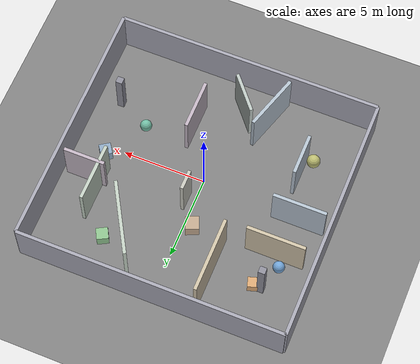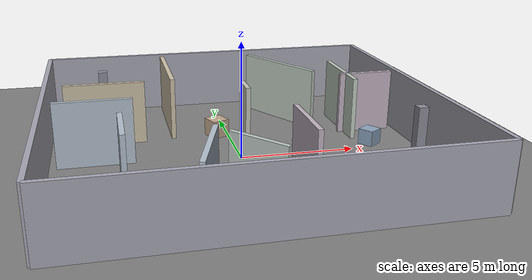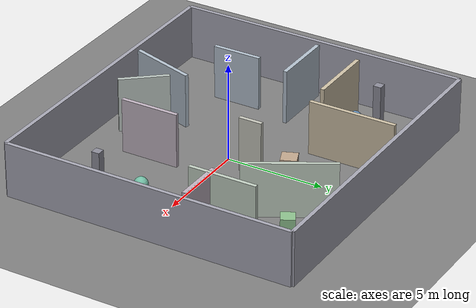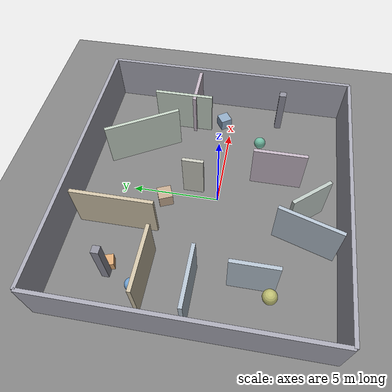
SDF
<?xml version="1.0"?>
<sdf version="1.6">
  <world name="complex_rooms">

    <!-- Physics -->
    <physics type="ode">
      <max_step_size>0.001</max_step_size>
      <real_time_factor>1</real_time_factor>
      <real_time_update_rate>1000</real_time_update_rate>
    </physics>

    <!-- 核心系统插件 -->
    <plugin name="gz::sim::systems::Physics" filename="gz-sim-physics-system"/>
    <plugin name="gz::sim::systems::UserCommands" filename="gz-sim-user-commands-system"/>
    <plugin name="gz::sim::systems::SceneBroadcaster" filename="gz-sim-scene-broadcaster-system"/>
    <plugin name="gz::sim::systems::Contact" filename="gz-sim-contact-system"/>

    <!-- 传感器系统插件：必须加载才能让传感器工作 -->
    <plugin filename="gz-sim-sensors-system" name="gz::sim::systems::Sensors">
      <render_engine>ogre2</render_engine>
    </plugin>

    <!-- IMU 系统插件 -->
    <plugin filename="gz-sim-imu-system" name="gz::sim::systems::Imu">
    </plugin>

    <!-- Lighting -->
    <light name="sun" type="directional">
      <cast_shadows>true</cast_shadows>
      <pose>0 0 10 0 0 0</pose>
      <diffuse>0.8 0.8 0.8 1</diffuse>
      <specular>0.2 0.2 0.2 1</specular>
      <direction>-0.5 0.1 -0.9</direction>
    </light>

    <light name="room_light_1" type="point">
      <pose>-3 4 2.5 0 0 0</pose>
      <diffuse>0.9 0.9 0.7 1</diffuse>
      <specular>0.1 0.1 0.1 1</specular>
      <attenuation>
        <range>10</range>
        <linear>0.1</linear>
        <constant>0.5</constant>
        <quadratic>0.01</quadratic>
      </attenuation>
    </light>

    <light name="room_light_2" type="point">
      <pose>4 2 2.5 0 0 0</pose>
      <diffuse>0.9 0.9 0.7 1</diffuse>
      <specular>0.1 0.1 0.1 1</specular>
      <attenuation>
        <range>10</range>
        <linear>0.1</linear>
        <constant>0.5</constant>
        <quadratic>0.01</quadratic>
      </attenuation>
    </light>

    <!-- Ground Plane -->
    <model name="ground_plane">
      <static>true</static>
      <link name="link">
        <collision name="collision">
          <geometry>
            <plane>
              <normal>0 0 1</normal>
              <size>50 50</size>
            </plane>
          </geometry>
        </collision>
        <visual name="visual">
          <geometry>
            <plane>
              <normal>0 0 1</normal>
              <size>50 50</size>
            </plane>
          </geometry>
          <material>
            <ambient>0.4 0.4 0.4 1</ambient>
            <diffuse>0.5 0.5 0.5 1</diffuse>
          </material>
        </visual>
      </link>
    </model>

    <!-- Outer boundary walls -->
    <model name="boundary_north">
      <static>true</static>
      <pose>0 8 1.4 0 0 0</pose>
      <link name="link">
        <collision name="collision">
          <geometry>
            <box>
              <size>16 0.2 2.8</size>
            </box>
          </geometry>
        </collision>
        <visual name="visual">
          <geometry>
            <box>
              <size>16 0.2 2.8</size>
            </box>
          </geometry>
          <material>
            <ambient>0.6 0.6 0.65 1</ambient>
            <diffuse>0.65 0.65 0.7 1</diffuse>
          </material>
        </visual>
      </link>
    </model>

    <model name="boundary_south">
      <static>true</static>
      <pose>0 -7 1.4 0 0 0</pose>
      <link name="link">
        <collision name="collision">
          <geometry>
            <box>
              <size>16 0.2 2.8</size>
            </box>
          </geometry>
        </collision>
        <visual name="visual">
          <geometry>
            <box>
              <size>16 0.2 2.8</size>
            </box>
          </geometry>
          <material>
            <ambient>0.6 0.6 0.65 1</ambient>
            <diffuse>0.65 0.65 0.7 1</diffuse>
          </material>
        </visual>
      </link>
    </model>

    <model name="boundary_east">
      <static>true</static>
      <pose>8 0.5 1.4 0 0 0</pose>
      <link name="link">
        <collision name="collision">
          <geometry>
            <box>
              <size>0.2 15 2.8</size>
            </box>
          </geometry>
        </collision>
        <visual name="visual">
          <geometry>
            <box>
              <size>0.2 15 2.8</size>
            </box>
          </geometry>
          <material>
            <ambient>0.6 0.6 0.65 1</ambient>
            <diffuse>0.65 0.65 0.7 1</diffuse>
          </material>
        </visual>
      </link>
    </model>

    <model name="boundary_west">
      <static>true</static>
      <pose>-8 0.5 1.4 0 0 0</pose>
      <link name="link">
        <collision name="collision">
          <geometry>
            <box>
              <size>0.2 15 2.8</size>
            </box>
          </geometry>
        </collision>
        <visual name="visual">
          <geometry>
            <box>
              <size>0.2 15 2.8</size>
            </box>
          </geometry>
          <material>
            <ambient>0.6 0.6 0.65 1</ambient>
            <diffuse>0.65 0.65 0.7 1</diffuse>
          </material>
        </visual>
      </link>
    </model>

    <!-- Room 1: Northwest large room - separated by L-shaped wall -->
    <model name="wall_room1_vertical">
      <static>true</static>
      <pose>-2.5 5.2 1.4 0 0 0</pose>
      <link name="link">
        <collision name="collision">
          <geometry>
            <box>
              <size>0.2 4.5 2.8</size>
            </box>
          </geometry>
        </collision>
        <visual name="visual">
          <geometry>
            <box>
              <size>0.2 4.5 2.8</size>
            </box>
          </geometry>
          <material>
            <ambient>0.75 0.7 0.6 1</ambient>
            <diffuse>0.8 0.75 0.65 1</diffuse>
          </material>
        </visual>
      </link>
    </model>

    <model name="wall_room1_horizontal_top">
      <static>true</static>
      <pose>-5.5 2.9 1.4 0 0 0</pose>
      <link name="link">
        <collision name="collision">
          <geometry>
            <box>
              <size>3.5 0.2 2.8</size>
            </box>
          </geometry>
        </collision>
        <visual name="visual">
          <geometry>
            <box>
              <size>3.5 0.2 2.8</size>
            </box>
          </geometry>
          <material>
            <ambient>0.75 0.7 0.6 1</ambient>
            <diffuse>0.8 0.75 0.65 1</diffuse>
          </material>
        </visual>
      </link>
    </model>

    <!-- Room 2: Northeast corridor-style room -->
    <model name="wall_room2_diagonal">
      <static>true</static>
      <pose>3 5 1.4 0 0 0.5236</pose>
      <link name="link">
        <collision name="collision">
          <geometry>
            <box>
              <size>0.2 4.5 2.8</size>
            </box>
          </geometry>
        </collision>
        <visual name="visual">
          <geometry>
            <box>
              <size>0.2 4.5 2.8</size>
            </box>
          </geometry>
          <material>
            <ambient>0.7 0.75 0.7 1</ambient>
            <diffuse>0.75 0.8 0.75 1</diffuse>
          </material>
        </visual>
      </link>
    </model>

    <model name="wall_room2_short">
      <static>true</static>
      <pose>5.5 3 1.4 0 0 0</pose>
      <link name="link">
        <collision name="collision">
          <geometry>
            <box>
              <size>0.2 3.5 2.8</size>
            </box>
          </geometry>
        </collision>
        <visual name="visual">
          <geometry>
            <box>
              <size>0.2 3.5 2.8</size>
            </box>
          </geometry>
          <material>
            <ambient>0.7 0.75 0.7 1</ambient>
            <diffuse>0.75 0.8 0.75 1</diffuse>
          </material>
        </visual>
      </link>
    </model>

    <!-- Room 3: Southwest irregular room -->
    <model name="wall_room3_angled_1">
      <static>true</static>
      <pose>-5 -2.5 1.4 0 0 0</pose>
      <link name="link">
        <collision name="collision">
          <geometry>
            <box>
              <size>0.2 2.5 2.8</size>
            </box>
          </geometry>
        </collision>
        <visual name="visual">
          <geometry>
            <box>
              <size>0.2 2.5 2.8</size>
            </box>
          </geometry>
          <material>
            <ambient>0.65 0.7 0.75 1</ambient>
            <diffuse>0.7 0.75 0.8 1</diffuse>
          </material>
        </visual>
      </link>
    </model>

    <model name="wall_room3_angled_2">
      <static>true</static>
      <pose>-2.2 -5 1.4 0 0 -0.3</pose>
      <link name="link">
        <collision name="collision">
          <geometry>
            <box>
              <size>0.2 3.5 2.8</size>
            </box>
          </geometry>
        </collision>
        <visual name="visual">
          <geometry>
            <box>
              <size>0.2 3.5 2.8</size>
            </box>
          </geometry>
          <material>
            <ambient>0.65 0.7 0.75 1</ambient>
            <diffuse>0.7 0.75 0.8 1</diffuse>
          </material>
        </visual>
      </link>
    </model>

    <model name="wall_room3_bottom">
      <static>true</static>
      <pose>-6 0.5 1.4 0 0 0</pose>
      <link name="link">
        <collision name="collision">
          <geometry>
            <box>
              <size>3.2 0.2 2.8</size>
            </box>
          </geometry>
        </collision>
        <visual name="visual">
          <geometry>
            <box>
              <size>3.2 0.2 2.8</size>
            </box>
          </geometry>
          <material>
            <ambient>0.65 0.7 0.75 1</ambient>
            <diffuse>0.7 0.75 0.8 1</diffuse>
          </material>
        </visual>
      </link>
    </model>

    <!-- Room 4: Southeast compact room with alcove -->
    <model name="wall_room4_main_vertical">
      <static>true</static>
      <pose>1.8 -3.2 1.4 0 0 0</pose>
      <link name="link">
        <collision name="collision">
          <geometry>
            <box>
              <size>0.2 3.0 2.8</size>
            </box>
          </geometry>
        </collision>
        <visual name="visual">
          <geometry>
            <box>
              <size>0.2 3.0 2.8</size>
            </box>
          </geometry>
          <material>
            <ambient>0.7 0.65 0.7 1</ambient>
            <diffuse>0.75 0.7 0.75 1</diffuse>
          </material>
        </visual>
      </link>
    </model>

    <model name="wall_room4_alcove_top">
      <static>true</static>
      <pose>6.4 2.3 1.4 0 0 0</pose>
      <link name="link">
        <collision name="collision">
          <geometry>
            <box>
              <size>2.5 0.2 2.8</size>
            </box>
          </geometry>
        </collision>
        <visual name="visual">
          <geometry>
            <box>
              <size>2.5 0.2 2.8</size>
            </box>
          </geometry>
          <material>
            <ambient>0.7 0.65 0.7 1</ambient>
            <diffuse>0.75 0.7 0.75 1</diffuse>
          </material>
        </visual>
      </link>
    </model>

    <!-- Central dividing wall with offset -->
    <model name="wall_central_offset">
      <static>true</static>
      <pose>0.5 1.5 1.4 0 0 0</pose>
      <link name="link">
        <collision name="collision">
          <geometry>
            <box>
              <size>0.2 1.2 2.8</size>
            </box>
          </geometry>
        </collision>
        <visual name="visual">
          <geometry>
            <box>
              <size>0.2 1.2 2.8</size>
            </box>
          </geometry>
          <material>
            <ambient>0.72 0.72 0.68 1</ambient>
            <diffuse>0.77 0.77 0.73 1</diffuse>
          </material>
        </visual>
      </link>
    </model>

    <!-- Additional obstacles for complexity -->
    <model name="pillar_1">
      <static>true</static>
      <pose>-5.5 5 1.4 0 0 0</pose>
      <link name="link">
        <collision name="collision">
          <geometry>
            <box>
              <size>0.4 0.4 2.8</size>
            </box>
          </geometry>
        </collision>
        <visual name="visual">
          <geometry>
            <box>
              <size>0.4 0.4 2.8</size>
            </box>
          </geometry>
          <material>
            <ambient>0.5 0.5 0.55 1</ambient>
            <diffuse>0.55 0.55 0.6 1</diffuse>
          </material>
        </visual>
      </link>
    </model>

    <model name="pillar_2">
      <static>true</static>
      <pose>6.5 -3 1.4 0 0 0</pose>
      <link name="link">
        <collision name="collision">
          <geometry>
            <box>
              <size>0.4 0.4 2.8</size>
            </box>
          </geometry>
        </collision>
        <visual name="visual">
          <geometry>
            <box>
              <size>0.4 0.4 2.8</size>
            </box>
          </geometry>
          <material>
            <ambient>0.5 0.5 0.55 1</ambient>
            <diffuse>0.55 0.55 0.6 1</diffuse>
          </material>
        </visual>
      </link>
    </model>

    <model name="short_wall_obstacle">
      <static>true</static>
      <pose>-0.5 -5 1.4 0 0 0.7</pose>
      <link name="link">
        <collision name="collision">
          <geometry>
            <box>
              <size>0.2 2.5 2.8</size>
            </box>
          </geometry>
        </collision>
        <visual name="visual">
          <geometry>
            <box>
              <size>0.2 2.5 2.8</size>
            </box>
          </geometry>
          <material>
            <ambient>0.68 0.72 0.7 1</ambient>
            <diffuse>0.73 0.77 0.75 1</diffuse>
          </material>
        </visual>
      </link>
    </model>

    <!-- Room objects: boxes and spheres -->
    <!-- Room 1 objects -->
    <model name="box_room1_1">
      <static>true</static>
      <pose>-5 5 0.3 0 0 0.3</pose>
      <link name="link">
        <collision name="collision">
          <geometry>
            <box>
              <size>0.6 0.6 0.6</size>
            </box>
          </geometry>
        </collision>
        <visual name="visual">
          <geometry>
            <box>
              <size>0.6 0.6 0.6</size>
            </box>
          </geometry>
          <material>
            <ambient>0.8 0.6 0.4 1</ambient>
            <diffuse>0.85 0.65 0.45 1</diffuse>
          </material>
        </visual>
      </link>
    </model>

    <model name="sphere_room1">
      <static>true</static>
      <pose>-6 3.5 0.35 0 0 0</pose>
      <link name="link">
        <collision name="collision">
          <geometry>
            <sphere>
              <radius>0.35</radius>
            </sphere>
          </geometry>
        </collision>
        <visual name="visual">
          <geometry>
            <sphere>
              <radius>0.35</radius>
            </sphere>
          </geometry>
          <material>
            <ambient>0.4 0.6 0.8 1</ambient>
            <diffuse>0.45 0.65 0.85 1</diffuse>
          </material>
        </visual>
      </link>
    </model>

    <!-- Room 2 objects -->
    <model name="box_room2_1">
      <static>true</static>
      <pose>4 5.5 0.35 0 0 0.5</pose>
      <link name="link">
        <collision name="collision">
          <geometry>
            <box>
              <size>0.7 0.7 0.7</size>
            </box>
          </geometry>
        </collision>
        <visual name="visual">
          <geometry>
            <box>
              <size>0.7 0.7 0.7</size>
            </box>
          </geometry>
          <material>
            <ambient>0.5 0.7 0.5 1</ambient>
            <diffuse>0.55 0.75 0.55 1</diffuse>
          </material>
        </visual>
      </link>
    </model>

    <!-- Room 3 objects -->
    <model name="sphere_room3">
      <static>true</static>
      <pose>-5.5 -3.5 0.4 0 0 0</pose>
      <link name="link">
        <collision name="collision">
          <geometry>
            <sphere>
              <radius>0.4</radius>
            </sphere>
          </geometry>
        </collision>
        <visual name="visual">
          <geometry>
            <sphere>
              <radius>0.4</radius>
            </sphere>
          </geometry>
          <material>
            <ambient>0.7 0.7 0.4 1</ambient>
            <diffuse>0.75 0.75 0.45 1</diffuse>
          </material>
        </visual>
      </link>
    </model>

    <!-- Room 4 objects -->
    <model name="sphere_room4_1">
      <static>true</static>
      <pose>4.5 -2 0.35 0 0 0</pose>
      <link name="link">
        <collision name="collision">
          <geometry>
            <sphere>
              <radius>0.35</radius>
            </sphere>
          </geometry>
        </collision>
        <visual name="visual">
          <geometry>
            <sphere>
              <radius>0.35</radius>
            </sphere>
          </geometry>
          <material>
            <ambient>0.4 0.7 0.6 1</ambient>
            <diffuse>0.45 0.75 0.65 1</diffuse>
          </material>
        </visual>
      </link>
    </model>

    <model name="box_room4_1">
      <static>true</static>
      <pose>6 0.5 0.35 0 0 0.6</pose>
      <link name="link">
        <collision name="collision">
          <geometry>
            <box>
              <size>0.7 0.7 0.7</size>
            </box>
          </geometry>
        </collision>
        <visual name="visual">
          <geometry>
            <box>
              <size>0.7 0.7 0.7</size>
            </box>
          </geometry>
          <material>
            <ambient>0.5 0.6 0.7 1</ambient>
            <diffuse>0.55 0.65 0.75 1</diffuse>
          </material>
        </visual>
      </link>
    </model>

    <!-- Central area objects -->
    <model name="box_central_1">
      <static>true</static>
      <pose>-0.5 3 0.4 0 0 0.4</pose>
      <link name="link">
        <collision name="collision">
          <geometry>
            <box>
              <size>0.8 0.8 0.8</size>
            </box>
          </geometry>
        </collision>
        <visual name="visual">
          <geometry>
            <box>
              <size>0.8 0.8 0.8</size>
            </box>
          </geometry>
          <material>
            <ambient>0.7 0.6 0.5 1</ambient>
            <diffuse>0.75 0.65 0.55 1</diffuse>
          </material>
        </visual>
      </link>
    </model>

  </world>
</sdf>
